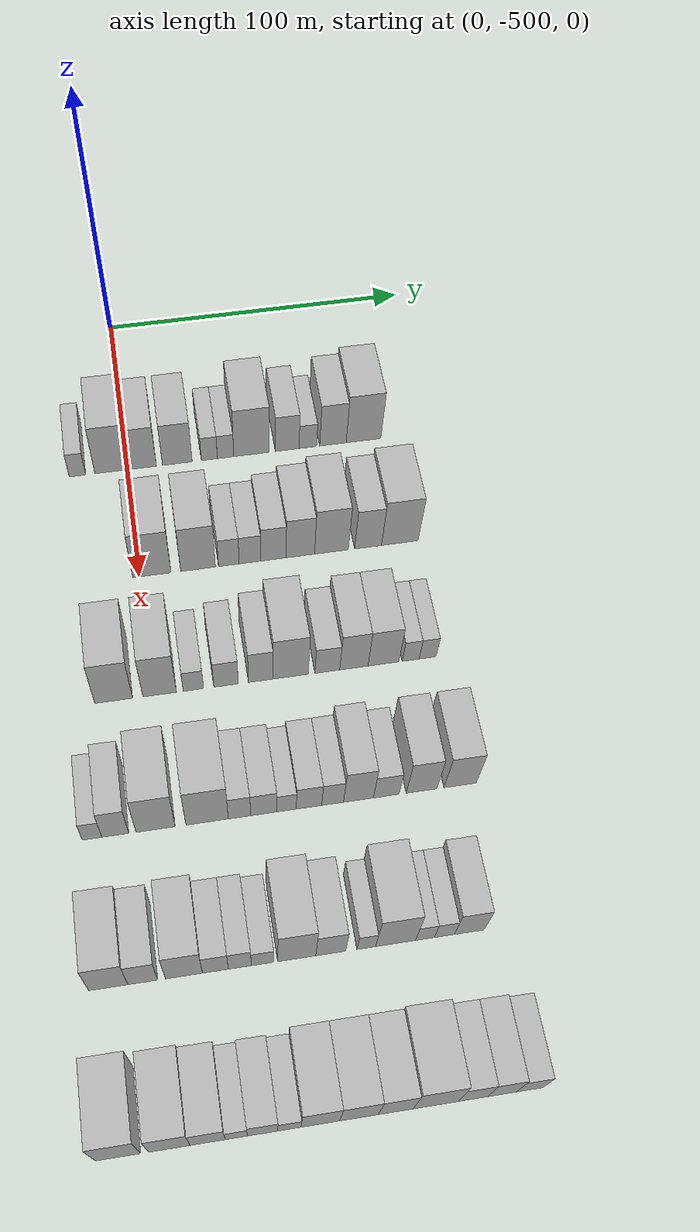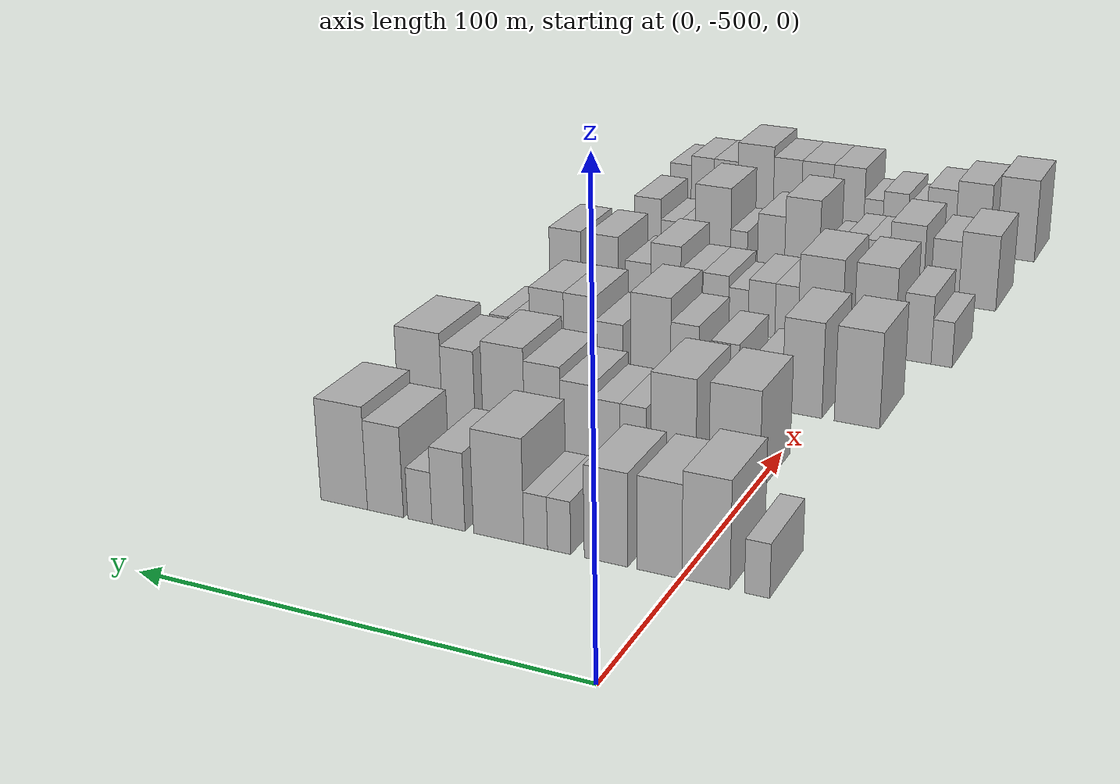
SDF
<sdf version="1.6">
 <world name="default">
  <model name="building_13">
   <static>1</static>
   <pose>50.0000 -515.9290 0 0.000000 0.000000 0.000000</pose>
   <link name="link">
    <pose>0 0 6.00 0 0 0</pose>
    <collision name="collision"><geometry><box><size>20.0000 5.2492 12.0000</size></box></geometry></collision>
    <visual name="visual">
     <cast_shadows>0</cast_shadows>
     <geometry><box><size>20.0000 5.2492 12.0000</size></box></geometry>
     <material>
      <script>
       <uri>model://HANNAS_wall/materials/scripts</uri>
       <uri>model://HANNAS_wall/materials/textures</uri>
       <name>vrc/HANNAS_wall</name>
      </script>
     </material>
    </visual>
   </link>
  </model>
  <model name="building_14">
   <static>1</static>
   <pose>50.0000 -505.2257 0 0.000000 0.000000 0.000000</pose>
   <link name="link">
    <pose>0 0 12.00 0 0 0</pose>
    <collision name="collision"><geometry><box><size>20.0000 10.1575 24.0000</size></box></geometry></collision>
    <visual name="visual">
     <cast_shadows>0</cast_shadows>
     <geometry><box><size>20.0000 10.1575 24.0000</size></box></geometry>
     <material>
      <script>
       <uri>model://HANNAS_wall/materials/scripts</uri>
       <uri>model://HANNAS_wall/materials/textures</uri>
       <name>vrc/HANNAS_wall</name>
      </script>
     </material>
    </visual>
   </link>
  </model>
  <model name="building_15">
   <static>1</static>
   <pose>50.0000 -495.3241 0 0.000000 0.000000 0.000000</pose>
   <link name="link">
    <pose>0 0 10.50 0 0 0</pose>
    <collision name="collision"><geometry><box><size>20.0000 9.6456 21.0000</size></box></geometry></collision>
    <visual name="visual">
     <cast_shadows>0</cast_shadows>
     <geometry><box><size>20.0000 9.6456 21.0000</size></box></geometry>
     <material>
      <script>
       <uri>model://HANNAS_wall/materials/scripts</uri>
       <uri>model://HANNAS_wall/materials/textures</uri>
       <name>vrc/HANNAS_wall</name>
      </script>
     </material>
    </visual>
   </link>
  </model>
  <model name="building_16">
   <static>1</static>
   <pose>50.0000 -483.7051 0 0.000000 0.000000 0.000000</pose>
   <link name="link">
    <pose>0 0 10.50 0 0 0</pose>
    <collision name="collision"><geometry><box><size>20.0000 9.5925 21.0000</size></box></geometry></collision>
    <visual name="visual">
     <cast_shadows>0</cast_shadows>
     <geometry><box><size>20.0000 9.5925 21.0000</size></box></geometry>
     <material>
      <script>
       <uri>model://HANNAS_wall/materials/scripts</uri>
       <uri>model://HANNAS_wall/materials/textures</uri>
       <name>vrc/HANNAS_wall</name>
      </script>
     </material>
    </visual>
   </link>
  </model>
  <model name="building_17">
   <static>1</static>
   <pose>50.0000 -473.2947 0 0.000000 0.000000 0.000000</pose>
   <link name="link">
    <pose>0 0 6.00 0 0 0</pose>
    <collision name="collision"><geometry><box><size>20.0000 5.2283 12.0000</size></box></geometry></collision>
    <visual name="visual">
     <cast_shadows>0</cast_shadows>
     <geometry><box><size>20.0000 5.2283 12.0000</size></box></geometry>
     <material>
      <script>
       <uri>model://HANNAS_wall/materials/scripts</uri>
       <uri>model://HANNAS_wall/materials/textures</uri>
       <name>vrc/HANNAS_wall</name>
      </script>
     </material>
    </visual>
   </link>
  </model>
  <model name="building_18">
   <static>1</static>
   <pose>50.0000 -468.0105 0 0.000000 0.000000 0.000000</pose>
   <link name="link">
    <pose>0 0 6.00 0 0 0</pose>
    <collision name="collision"><geometry><box><size>20.0000 5.3400 12.0000</size></box></geometry></collision>
    <visual name="visual">
     <cast_shadows>0</cast_shadows>
     <geometry><box><size>20.0000 5.3400 12.0000</size></box></geometry>
     <material>
      <script>
       <uri>model://HANNAS_wall/materials/scripts</uri>
       <uri>model://HANNAS_wall/materials/textures</uri>
       <name>vrc/HANNAS_wall</name>
      </script>
     </material>
    </visual>
   </link>
  </model>
  <model name="building_19">
   <static>1</static>
   <pose>50.0000 -459.5287 0 0.000000 0.000000 0.000000</pose>
   <link name="link">
    <pose>0 0 12.00 0 0 0</pose>
    <collision name="collision"><geometry><box><size>20.0000 11.6236 24.0000</size></box></geometry></collision>
    <visual name="visual">
     <cast_shadows>0</cast_shadows>
     <geometry><box><size>20.0000 11.6236 24.0000</size></box></geometry>
     <material>
      <script>
       <uri>model://HANNAS_wall/materials/scripts</uri>
       <uri>model://HANNAS_wall/materials/textures</uri>
       <name>vrc/HANNAS_wall</name>
      </script>
     </material>
    </visual>
   </link>
  </model>
  <model name="building_20">
   <static>1</static>
   <pose>50.0000 -447.8351 0 0.000000 0.000000 0.000000</pose>
   <link name="link">
    <pose>0 0 9.00 0 0 0</pose>
    <collision name="collision"><geometry><box><size>20.0000 7.7635 18.0000</size></box></geometry></collision>
    <visual name="visual">
     <cast_shadows>0</cast_shadows>
     <geometry><box><size>20.0000 7.7635 18.0000</size></box></geometry>
     <material>
      <script>
       <uri>model://HANNAS_wall/materials/scripts</uri>
       <uri>model://HANNAS_wall/materials/textures</uri>
       <name>vrc/HANNAS_wall</name>
      </script>
     </material>
    </visual>
   </link>
  </model>
  <model name="building_21">
   <static>1</static>
   <pose>50.0000 -441.0553 0 0.000000 0.000000 0.000000</pose>
   <link name="link">
    <pose>0 0 6.00 0 0 0</pose>
    <collision name="collision"><geometry><box><size>20.0000 5.7961 12.0000</size></box></geometry></collision>
    <visual name="visual">
     <cast_shadows>0</cast_shadows>
     <geometry><box><size>20.0000 5.7961 12.0000</size></box></geometry>
     <material>
      <script>
       <uri>model://HANNAS_wall/materials/scripts</uri>
       <uri>model://HANNAS_wall/materials/textures</uri>
       <name>vrc/HANNAS_wall</name>
      </script>
     </material>
    </visual>
   </link>
  </model>
  <model name="building_22">
   <static>1</static>
   <pose>50.0000 -432.7885 0 0.000000 0.000000 0.000000</pose>
   <link name="link">
    <pose>0 0 10.50 0 0 0</pose>
    <collision name="collision"><geometry><box><size>20.0000 8.7375 21.0000</size></box></geometry></collision>
    <visual name="visual">
     <cast_shadows>0</cast_shadows>
     <geometry><box><size>20.0000 8.7375 21.0000</size></box></geometry>
     <material>
      <script>
       <uri>model://HANNAS_wall/materials/scripts</uri>
       <uri>model://HANNAS_wall/materials/textures</uri>
       <name>vrc/HANNAS_wall</name>
      </script>
     </material>
    </visual>
   </link>
  </model>
  <model name="building_23">
   <static>1</static>
   <pose>50.0000 -422.6834 0 0.000000 0.000000 0.000000</pose>
   <link name="link">
    <pose>0 0 12.00 0 0 0</pose>
    <collision name="collision"><geometry><box><size>20.0000 11.4728 24.0000</size></box></geometry></collision>
    <visual name="visual">
     <cast_shadows>0</cast_shadows>
     <geometry><box><size>20.0000 11.4728 24.0000</size></box></geometry>
     <material>
      <script>
       <uri>model://HANNAS_wall/materials/scripts</uri>
       <uri>model://HANNAS_wall/materials/textures</uri>
       <name>vrc/HANNAS_wall</name>
      </script>
     </material>
    </visual>
   </link>
  </model>
  <model name="building_160">
   <static>1</static>
   <pose>90.0000 -496.0259 0 0.000000 0.000000 0.000000</pose>
   <link name="link">
    <pose>0 0 12.00 0 0 0</pose>
    <collision name="collision"><geometry><box><size>20.0000 11.7619 24.0000</size></box></geometry></collision>
    <visual name="visual">
     <cast_shadows>0</cast_shadows>
     <geometry><box><size>20.0000 11.7619 24.0000</size></box></geometry>
     <material>
      <script>
       <uri>model://HANNAS_wall/materials/scripts</uri>
       <uri>model://HANNAS_wall/materials/textures</uri>
       <name>vrc/HANNAS_wall</name>
      </script>
     </material>
    </visual>
   </link>
  </model>
  <model name="building_161">
   <static>1</static>
   <pose>90.0000 -481.8008 0 0.000000 0.000000 0.000000</pose>
   <link name="link">
    <pose>0 0 12.00 0 0 0</pose>
    <collision name="collision"><geometry><box><size>20.0000 10.6884 24.0000</size></box></geometry></collision>
    <visual name="visual">
     <cast_shadows>0</cast_shadows>
     <geometry><box><size>20.0000 10.6884 24.0000</size></box></geometry>
     <material>
      <script>
       <uri>model://HANNAS_wall/materials/scripts</uri>
       <uri>model://HANNAS_wall/materials/textures</uri>
       <name>vrc/HANNAS_wall</name>
      </script>
     </material>
    </visual>
   </link>
  </model>
  <model name="building_162">
   <static>1</static>
   <pose>90.0000 -472.2706 0 0.000000 0.000000 0.000000</pose>
   <link name="link">
    <pose>0 0 7.50 0 0 0</pose>
    <collision name="collision"><geometry><box><size>20.0000 6.3720 15.0000</size></box></geometry></collision>
    <visual name="visual">
     <cast_shadows>0</cast_shadows>
     <geometry><box><size>20.0000 6.3720 15.0000</size></box></geometry>
     <material>
      <script>
       <uri>model://HANNAS_wall/materials/scripts</uri>
       <uri>model://HANNAS_wall/materials/textures</uri>
       <name>vrc/HANNAS_wall</name>
      </script>
     </material>
    </visual>
   </link>
  </model>
  <model name="building_163">
   <static>1</static>
   <pose>90.0000 -465.7059 0 0.000000 0.000000 0.000000</pose>
   <link name="link">
    <pose>0 0 7.50 0 0 0</pose>
    <collision name="collision"><geometry><box><size>20.0000 6.7574 15.0000</size></box></geometry></collision>
    <visual name="visual">
     <cast_shadows>0</cast_shadows>
     <geometry><box><size>20.0000 6.7574 15.0000</size></box></geometry>
     <material>
      <script>
       <uri>model://HANNAS_wall/materials/scripts</uri>
       <uri>model://HANNAS_wall/materials/textures</uri>
       <name>vrc/HANNAS_wall</name>
      </script>
     </material>
    </visual>
   </link>
  </model>
  <model name="building_164">
   <static>1</static>
   <pose>90.0000 -458.4260 0 0.000000 0.000000 0.000000</pose>
   <link name="link">
    <pose>0 0 9.00 0 0 0</pose>
    <collision name="collision"><geometry><box><size>20.0000 7.8024 18.0000</size></box></geometry></collision>
    <visual name="visual">
     <cast_shadows>0</cast_shadows>
     <geometry><box><size>20.0000 7.8024 18.0000</size></box></geometry>
     <material>
      <script>
       <uri>model://HANNAS_wall/materials/scripts</uri>
       <uri>model://HANNAS_wall/materials/textures</uri>
       <name>vrc/HANNAS_wall</name>
      </script>
     </material>
    </visual>
   </link>
  </model>
  <model name="building_165">
   <static>1</static>
   <pose>90.0000 -450.0483 0 0.000000 0.000000 0.000000</pose>
   <link name="link">
    <pose>0 0 10.50 0 0 0</pose>
    <collision name="collision"><geometry><box><size>20.0000 8.9530 21.0000</size></box></geometry></collision>
    <visual name="visual">
     <cast_shadows>0</cast_shadows>
     <geometry><box><size>20.0000 8.9530 21.0000</size></box></geometry>
     <material>
      <script>
       <uri>model://HANNAS_wall/materials/scripts</uri>
       <uri>model://HANNAS_wall/materials/textures</uri>
       <name>vrc/HANNAS_wall</name>
      </script>
     </material>
    </visual>
   </link>
  </model>
  <model name="building_166">
   <static>1</static>
   <pose>90.0000 -440.2743 0 0.000000 0.000000 0.000000</pose>
   <link name="link">
    <pose>0 0 12.00 0 0 0</pose>
    <collision name="collision"><geometry><box><size>20.0000 10.5950 24.0000</size></box></geometry></collision>
    <visual name="visual">
     <cast_shadows>0</cast_shadows>
     <geometry><box><size>20.0000 10.5950 24.0000</size></box></geometry>
     <material>
      <script>
       <uri>model://HANNAS_wall/materials/scripts</uri>
       <uri>model://HANNAS_wall/materials/textures</uri>
       <name>vrc/HANNAS_wall</name>
      </script>
     </material>
    </visual>
   </link>
  </model>
  <model name="building_167">
   <static>1</static>
   <pose>90.0000 -428.7430 0 0.000000 0.000000 0.000000</pose>
   <link name="link">
    <pose>0 0 10.50 0 0 0</pose>
    <collision name="collision"><geometry><box><size>20.0000 8.4676 21.0000</size></box></geometry></collision>
    <visual name="visual">
     <cast_shadows>0</cast_shadows>
     <geometry><box><size>20.0000 8.4676 21.0000</size></box></geometry>
     <material>
      <script>
       <uri>model://HANNAS_wall/materials/scripts</uri>
       <uri>model://HANNAS_wall/materials/textures</uri>
       <name>vrc/HANNAS_wall</name>
      </script>
     </material>
    </visual>
   </link>
  </model>
  <model name="building_168">
   <static>1</static>
   <pose>90.0000 -418.7103 0 0.000000 0.000000 0.000000</pose>
   <link name="link">
    <pose>0 0 12.00 0 0 0</pose>
    <collision name="collision"><geometry><box><size>20.0000 11.5978 24.0000</size></box></geometry></collision>
    <visual name="visual">
     <cast_shadows>0</cast_shadows>
     <geometry><box><size>20.0000 11.5978 24.0000</size></box></geometry>
     <material>
      <script>
       <uri>model://HANNAS_wall/materials/scripts</uri>
       <uri>model://HANNAS_wall/materials/textures</uri>
       <name>vrc/HANNAS_wall</name>
      </script>
     </material>
    </visual>
   </link>
  </model>
  <model name="building_291">
   <static>1</static>
   <pose>130.0000 -511.2326 0 0.000000 0.000000 0.000000</pose>
   <link name="link">
    <pose>0 0 12.00 0 0 0</pose>
    <collision name="collision"><geometry><box><size>20.0000 10.9608 24.0000</size></box></geometry></collision>
    <visual name="visual">
     <cast_shadows>0</cast_shadows>
     <geometry><box><size>20.0000 10.9608 24.0000</size></box></geometry>
     <material>
      <script>
       <uri>model://HANNAS_wall/materials/scripts</uri>
       <uri>model://HANNAS_wall/materials/textures</uri>
       <name>vrc/HANNAS_wall</name>
      </script>
     </material>
    </visual>
   </link>
  </model>
  <model name="building_292">
   <static>1</static>
   <pose>130.0000 -497.8514 0 0.000000 0.000000 0.000000</pose>
   <link name="link">
    <pose>0 0 12.00 0 0 0</pose>
    <collision name="collision"><geometry><box><size>20.0000 9.8015 24.0000</size></box></geometry></collision>
    <visual name="visual">
     <cast_shadows>0</cast_shadows>
     <geometry><box><size>20.0000 9.8015 24.0000</size></box></geometry>
     <material>
      <script>
       <uri>model://HANNAS_wall/materials/scripts</uri>
       <uri>model://HANNAS_wall/materials/textures</uri>
       <name>vrc/HANNAS_wall</name>
      </script>
     </material>
    </visual>
   </link>
  </model>
  <model name="building_293">
   <static>1</static>
   <pose>130.0000 -487.9858 0 0.000000 0.000000 0.000000</pose>
   <link name="link">
    <pose>0 0 6.00 0 0 0</pose>
    <collision name="collision"><geometry><box><size>20.0000 5.9298 12.0000</size></box></geometry></collision>
    <visual name="visual">
     <cast_shadows>0</cast_shadows>
     <geometry><box><size>20.0000 5.9298 12.0000</size></box></geometry>
     <material>
      <script>
       <uri>model://HANNAS_wall/materials/scripts</uri>
       <uri>model://HANNAS_wall/materials/textures</uri>
       <name>vrc/HANNAS_wall</name>
      </script>
     </material>
    </visual>
   </link>
  </model>
  <model name="building_294">
   <static>1</static>
   <pose>130.0000 -478.4175 0 0.000000 0.000000 0.000000</pose>
   <link name="link">
    <pose>0 0 7.50 0 0 0</pose>
    <collision name="collision"><geometry><box><size>20.0000 7.2067 15.0000</size></box></geometry></collision>
    <visual name="visual">
     <cast_shadows>0</cast_shadows>
     <geometry><box><size>20.0000 7.2067 15.0000</size></box></geometry>
     <material>
      <script>
       <uri>model://HANNAS_wall/materials/scripts</uri>
       <uri>model://HANNAS_wall/materials/textures</uri>
       <name>vrc/HANNAS_wall</name>
      </script>
     </material>
    </visual>
   </link>
  </model>
  <model name="building_295">
   <static>1</static>
   <pose>130.0000 -468.1986 0 0.000000 0.000000 0.000000</pose>
   <link name="link">
    <pose>0 0 9.00 0 0 0</pose>
    <collision name="collision"><geometry><box><size>20.0000 7.2311 18.0000</size></box></geometry></collision>
    <visual name="visual">
     <cast_shadows>0</cast_shadows>
     <geometry><box><size>20.0000 7.2311 18.0000</size></box></geometry>
     <material>
      <script>
       <uri>model://HANNAS_wall/materials/scripts</uri>
       <uri>model://HANNAS_wall/materials/textures</uri>
       <name>vrc/HANNAS_wall</name>
      </script>
     </material>
    </visual>
   </link>
  </model>
  <model name="building_296">
   <static>1</static>
   <pose>130.0000 -459.3774 0 0.000000 0.000000 0.000000</pose>
   <link name="link">
    <pose>0 0 12.00 0 0 0</pose>
    <collision name="collision"><geometry><box><size>20.0000 10.4114 24.0000</size></box></geometry></collision>
    <visual name="visual">
     <cast_shadows>0</cast_shadows>
     <geometry><box><size>20.0000 10.4114 24.0000</size></box></geometry>
     <material>
      <script>
       <uri>model://HANNAS_wall/materials/scripts</uri>
       <uri>model://HANNAS_wall/materials/textures</uri>
       <name>vrc/HANNAS_wall</name>
      </script>
     </material>
    </visual>
   </link>
  </model>
  <model name="building_297">
   <static>1</static>
   <pose>130.0000 -448.4804 0 0.000000 0.000000 0.000000</pose>
   <link name="link">
    <pose>0 0 7.50 0 0 0</pose>
    <collision name="collision"><geometry><box><size>20.0000 7.3826 15.0000</size></box></geometry></collision>
    <visual name="visual">
     <cast_shadows>0</cast_shadows>
     <geometry><box><size>20.0000 7.3826 15.0000</size></box></geometry>
     <material>
      <script>
       <uri>model://HANNAS_wall/materials/scripts</uri>
       <uri>model://HANNAS_wall/materials/textures</uri>
       <name>vrc/HANNAS_wall</name>
      </script>
     </material>
    </visual>
   </link>
  </model>
  <model name="building_298">
   <static>1</static>
   <pose>130.0000 -440.5735 0 0.000000 0.000000 0.000000</pose>
   <link name="link">
    <pose>0 0 10.50 0 0 0</pose>
    <collision name="collision"><geometry><box><size>20.0000 8.4312 21.0000</size></box></geometry></collision>
    <visual name="visual">
     <cast_shadows>0</cast_shadows>
     <geometry><box><size>20.0000 8.4312 21.0000</size></box></geometry>
     <material>
      <script>
       <uri>model://HANNAS_wall/materials/scripts</uri>
       <uri>model://HANNAS_wall/materials/textures</uri>
       <name>vrc/HANNAS_wall</name>
      </script>
     </material>
    </visual>
   </link>
  </model>
  <model name="building_299">
   <static>1</static>
   <pose>130.0000 -431.7230 0 0.000000 0.000000 0.000000</pose>
   <link name="link">
    <pose>0 0 10.50 0 0 0</pose>
    <collision name="collision"><geometry><box><size>20.0000 9.2698 21.0000</size></box></geometry></collision>
    <visual name="visual">
     <cast_shadows>0</cast_shadows>
     <geometry><box><size>20.0000 9.2698 21.0000</size></box></geometry>
     <material>
      <script>
       <uri>model://HANNAS_wall/materials/scripts</uri>
       <uri>model://HANNAS_wall/materials/textures</uri>
       <name>vrc/HANNAS_wall</name>
      </script>
     </material>
    </visual>
   </link>
  </model>
  <model name="building_300">
   <static>1</static>
   <pose>130.0000 -423.5550 0 0.000000 0.000000 0.000000</pose>
   <link name="link">
    <pose>0 0 6.00 0 0 0</pose>
    <collision name="collision"><geometry><box><size>20.0000 5.0663 12.0000</size></box></geometry></collision>
    <visual name="visual">
     <cast_shadows>0</cast_shadows>
     <geometry><box><size>20.0000 5.0663 12.0000</size></box></geometry>
     <material>
      <script>
       <uri>model://HANNAS_wall/materials/scripts</uri>
       <uri>model://HANNAS_wall/materials/textures</uri>
       <name>vrc/HANNAS_wall</name>
      </script>
     </material>
    </visual>
   </link>
  </model>
  <model name="building_301">
   <static>1</static>
   <pose>130.0000 -418.4880 0 0.000000 0.000000 0.000000</pose>
   <link name="link">
    <pose>0 0 6.00 0 0 0</pose>
    <collision name="collision"><geometry><box><size>20.0000 5.0676 12.0000</size></box></geometry></collision>
    <visual name="visual">
     <cast_shadows>0</cast_shadows>
     <geometry><box><size>20.0000 5.0676 12.0000</size></box></geometry>
     <material>
      <script>
       <uri>model://HANNAS_wall/materials/scripts</uri>
       <uri>model://HANNAS_wall/materials/textures</uri>
       <name>vrc/HANNAS_wall</name>
      </script>
     </material>
    </visual>
   </link>
  </model>
  <model name="building_431">
   <static>1</static>
   <pose>170.0000 -520.6272 0 0.000000 0.000000 0.000000</pose>
   <link name="link">
    <pose>0 0 6.00 0 0 0</pose>
    <collision name="collision"><geometry><box><size>20.0000 5.3405 12.0000</size></box></geometry></collision>
    <visual name="visual">
     <cast_shadows>0</cast_shadows>
     <geometry><box><size>20.0000 5.3405 12.0000</size></box></geometry>
     <material>
      <script>
       <uri>model://HANNAS_wall/materials/scripts</uri>
       <uri>model://HANNAS_wall/materials/textures</uri>
       <name>vrc/HANNAS_wall</name>
      </script>
     </material>
    </visual>
   </link>
  </model>
  <model name="building_432">
   <static>1</static>
   <pose>170.0000 -514.2699 0 0.000000 0.000000 0.000000</pose>
   <link name="link">
    <pose>0 0 9.00 0 0 0</pose>
    <collision name="collision"><geometry><box><size>20.0000 7.3741 18.0000</size></box></geometry></collision>
    <visual name="visual">
     <cast_shadows>0</cast_shadows>
     <geometry><box><size>20.0000 7.3741 18.0000</size></box></geometry>
     <material>
      <script>
       <uri>model://HANNAS_wall/materials/scripts</uri>
       <uri>model://HANNAS_wall/materials/textures</uri>
       <name>vrc/HANNAS_wall</name>
      </script>
     </material>
    </visual>
   </link>
  </model>
  <model name="building_433">
   <static>1</static>
   <pose>170.0000 -503.1865 0 0.000000 0.000000 0.000000</pose>
   <link name="link">
    <pose>0 0 12.00 0 0 0</pose>
    <collision name="collision"><geometry><box><size>20.0000 10.7928 24.0000</size></box></geometry></collision>
    <visual name="visual">
     <cast_shadows>0</cast_shadows>
     <geometry><box><size>20.0000 10.7928 24.0000</size></box></geometry>
     <material>
      <script>
       <uri>model://HANNAS_wall/materials/scripts</uri>
       <uri>model://HANNAS_wall/materials/textures</uri>
       <name>vrc/HANNAS_wall</name>
      </script>
     </material>
    </visual>
   </link>
  </model>
  <model name="building_434">
   <static>1</static>
   <pose>170.0000 -488.9445 0 0.000000 0.000000 0.000000</pose>
   <link name="link">
    <pose>0 0 12.00 0 0 0</pose>
    <collision name="collision"><geometry><box><size>20.0000 11.6912 24.0000</size></box></geometry></collision>
    <visual name="visual">
     <cast_shadows>0</cast_shadows>
     <geometry><box><size>20.0000 11.6912 24.0000</size></box></geometry>
     <material>
      <script>
       <uri>model://HANNAS_wall/materials/scripts</uri>
       <uri>model://HANNAS_wall/materials/textures</uri>
       <name>vrc/HANNAS_wall</name>
      </script>
     </material>
    </visual>
   </link>
  </model>
  <model name="building_435">
   <static>1</static>
   <pose>170.0000 -479.9878 0 0.000000 0.000000 0.000000</pose>
   <link name="link">
    <pose>0 0 7.50 0 0 0</pose>
    <collision name="collision"><geometry><box><size>20.0000 6.2221 15.0000</size></box></geometry></collision>
    <visual name="visual">
     <cast_shadows>0</cast_shadows>
     <geometry><box><size>20.0000 6.2221 15.0000</size></box></geometry>
     <material>
      <script>
       <uri>model://HANNAS_wall/materials/scripts</uri>
       <uri>model://HANNAS_wall/materials/textures</uri>
       <name>vrc/HANNAS_wall</name>
      </script>
     </material>
    </visual>
   </link>
  </model>
  <model name="building_436">
   <static>1</static>
   <pose>170.0000 -473.2434 0 0.000000 0.000000 0.000000</pose>
   <link name="link">
    <pose>0 0 7.50 0 0 0</pose>
    <collision name="collision"><geometry><box><size>20.0000 7.2667 15.0000</size></box></geometry></collision>
    <visual name="visual">
     <cast_shadows>0</cast_shadows>
     <geometry><box><size>20.0000 7.2667 15.0000</size></box></geometry>
     <material>
      <script>
       <uri>model://HANNAS_wall/materials/scripts</uri>
       <uri>model://HANNAS_wall/materials/textures</uri>
       <name>vrc/HANNAS_wall</name>
      </script>
     </material>
    </visual>
   </link>
  </model>
  <model name="building_437">
   <static>1</static>
   <pose>170.0000 -466.8823 0 0.000000 0.000000 0.000000</pose>
   <link name="link">
    <pose>0 0 6.00 0 0 0</pose>
    <collision name="collision"><geometry><box><size>20.0000 5.4555 12.0000</size></box></geometry></collision>
    <visual name="visual">
     <cast_shadows>0</cast_shadows>
     <geometry><box><size>20.0000 5.4555 12.0000</size></box></geometry>
     <material>
      <script>
       <uri>model://HANNAS_wall/materials/scripts</uri>
       <uri>model://HANNAS_wall/materials/textures</uri>
       <name>vrc/HANNAS_wall</name>
      </script>
     </material>
    </visual>
   </link>
  </model>
  <model name="building_438">
   <static>1</static>
   <pose>170.0000 -460.5724 0 0.000000 0.000000 0.000000</pose>
   <link name="link">
    <pose>0 0 7.50 0 0 0</pose>
    <collision name="collision"><geometry><box><size>20.0000 7.1642 15.0000</size></box></geometry></collision>
    <visual name="visual">
     <cast_shadows>0</cast_shadows>
     <geometry><box><size>20.0000 7.1642 15.0000</size></box></geometry>
     <material>
      <script>
       <uri>model://HANNAS_wall/materials/scripts</uri>
       <uri>model://HANNAS_wall/materials/textures</uri>
       <name>vrc/HANNAS_wall</name>
      </script>
     </material>
    </visual>
   </link>
  </model>
  <model name="building_439">
   <static>1</static>
   <pose>170.0000 -453.9250 0 0.000000 0.000000 0.000000</pose>
   <link name="link">
    <pose>0 0 7.50 0 0 0</pose>
    <collision name="collision"><geometry><box><size>20.0000 6.1306 15.0000</size></box></geometry></collision>
    <visual name="visual">
     <cast_shadows>0</cast_shadows>
     <geometry><box><size>20.0000 6.1306 15.0000</size></box></geometry>
     <material>
      <script>
       <uri>model://HANNAS_wall/materials/scripts</uri>
       <uri>model://HANNAS_wall/materials/textures</uri>
       <name>vrc/HANNAS_wall</name>
      </script>
     </material>
    </visual>
   </link>
  </model>
  <model name="building_440">
   <static>1</static>
   <pose>170.0000 -446.6286 0 0.000000 0.000000 0.000000</pose>
   <link name="link">
    <pose>0 0 10.50 0 0 0</pose>
    <collision name="collision"><geometry><box><size>20.0000 8.4621 21.0000</size></box></geometry></collision>
    <visual name="visual">
     <cast_shadows>0</cast_shadows>
     <geometry><box><size>20.0000 8.4621 21.0000</size></box></geometry>
     <material>
      <script>
       <uri>model://HANNAS_wall/materials/scripts</uri>
       <uri>model://HANNAS_wall/materials/textures</uri>
       <name>vrc/HANNAS_wall</name>
      </script>
     </material>
    </visual>
   </link>
  </model>
  <model name="building_441">
   <static>1</static>
   <pose>170.0000 -438.7584 0 0.000000 0.000000 0.000000</pose>
   <link name="link">
    <pose>0 0 7.50 0 0 0</pose>
    <collision name="collision"><geometry><box><size>20.0000 7.2784 15.0000</size></box></geometry></collision>
    <visual name="visual">
     <cast_shadows>0</cast_shadows>
     <geometry><box><size>20.0000 7.2784 15.0000</size></box></geometry>
     <material>
      <script>
       <uri>model://HANNAS_wall/materials/scripts</uri>
       <uri>model://HANNAS_wall/materials/textures</uri>
       <name>vrc/HANNAS_wall</name>
      </script>
     </material>
    </visual>
   </link>
  </model>
  <model name="building_442">
   <static>1</static>
   <pose>170.0000 -428.7441 0 0.000000 0.000000 0.000000</pose>
   <link name="link">
    <pose>0 0 10.50 0 0 0</pose>
    <collision name="collision"><geometry><box><size>20.0000 8.7502 21.0000</size></box></geometry></collision>
    <visual name="visual">
     <cast_shadows>0</cast_shadows>
     <geometry><box><size>20.0000 8.7502 21.0000</size></box></geometry>
     <material>
      <script>
       <uri>model://HANNAS_wall/materials/scripts</uri>
       <uri>model://HANNAS_wall/materials/textures</uri>
       <name>vrc/HANNAS_wall</name>
      </script>
     </material>
    </visual>
   </link>
  </model>
  <model name="building_443">
   <static>1</static>
   <pose>170.0000 -417.7489 0 0.000000 0.000000 0.000000</pose>
   <link name="link">
    <pose>0 0 10.50 0 0 0</pose>
    <collision name="collision"><geometry><box><size>20.0000 9.2401 21.0000</size></box></geometry></collision>
    <visual name="visual">
     <cast_shadows>0</cast_shadows>
     <geometry><box><size>20.0000 9.2401 21.0000</size></box></geometry>
     <material>
      <script>
       <uri>model://HANNAS_wall/materials/scripts</uri>
       <uri>model://HANNAS_wall/materials/textures</uri>
       <name>vrc/HANNAS_wall</name>
      </script>
     </material>
    </visual>
   </link>
  </model>
  <model name="building_575">
   <static>1</static>
   <pose>210.0000 -519.5620 0 0.000000 0.000000 0.000000</pose>
   <link name="link">
    <pose>0 0 10.50 0 0 0</pose>
    <collision name="collision"><geometry><box><size>20.0000 10.1320 21.0000</size></box></geometry></collision>
    <visual name="visual">
     <cast_shadows>0</cast_shadows>
     <geometry><box><size>20.0000 10.1320 21.0000</size></box></geometry>
     <material>
      <script>
       <uri>model://HANNAS_wall/materials/scripts</uri>
       <uri>model://HANNAS_wall/materials/textures</uri>
       <name>vrc/HANNAS_wall</name>
      </script>
     </material>
    </visual>
   </link>
  </model>
  <model name="building_576">
   <static>1</static>
   <pose>210.0000 -510.6370 0 0.000000 0.000000 0.000000</pose>
   <link name="link">
    <pose>0 0 9.00 0 0 0</pose>
    <collision name="collision"><geometry><box><size>20.0000 7.7180 18.0000</size></box></geometry></collision>
    <visual name="visual">
     <cast_shadows>0</cast_shadows>
     <geometry><box><size>20.0000 7.7180 18.0000</size></box></geometry>
     <material>
      <script>
       <uri>model://HANNAS_wall/materials/scripts</uri>
       <uri>model://HANNAS_wall/materials/textures</uri>
       <name>vrc/HANNAS_wall</name>
      </script>
     </material>
    </visual>
   </link>
  </model>
  <model name="building_577">
   <static>1</static>
   <pose>210.0000 -499.9510 0 0.000000 0.000000 0.000000</pose>
   <link name="link">
    <pose>0 0 10.50 0 0 0</pose>
    <collision name="collision"><geometry><box><size>20.0000 9.6540 21.0000</size></box></geometry></collision>
    <visual name="visual">
     <cast_shadows>0</cast_shadows>
     <geometry><box><size>20.0000 9.6540 21.0000</size></box></geometry>
     <material>
      <script>
       <uri>model://HANNAS_wall/materials/scripts</uri>
       <uri>model://HANNAS_wall/materials/textures</uri>
       <name>vrc/HANNAS_wall</name>
      </script>
     </material>
    </visual>
   </link>
  </model>
  <model name="building_578">
   <static>1</static>
   <pose>210.0000 -491.7512 0 0.000000 0.000000 0.000000</pose>
   <link name="link">
    <pose>0 0 7.50 0 0 0</pose>
    <collision name="collision"><geometry><box><size>20.0000 6.7457 15.0000</size></box></geometry></collision>
    <visual name="visual">
     <cast_shadows>0</cast_shadows>
     <geometry><box><size>20.0000 6.7457 15.0000</size></box></geometry>
     <material>
      <script>
       <uri>model://HANNAS_wall/materials/scripts</uri>
       <uri>model://HANNAS_wall/materials/textures</uri>
       <name>vrc/HANNAS_wall</name>
      </script>
     </material>
    </visual>
   </link>
  </model>
  <model name="building_579">
   <static>1</static>
   <pose>210.0000 -485.3694 0 0.000000 0.000000 0.000000</pose>
   <link name="link">
    <pose>0 0 7.50 0 0 0</pose>
    <collision name="collision"><geometry><box><size>20.0000 6.0177 15.0000</size></box></geometry></collision>
    <visual name="visual">
     <cast_shadows>0</cast_shadows>
     <geometry><box><size>20.0000 6.0177 15.0000</size></box></geometry>
     <material>
      <script>
       <uri>model://HANNAS_wall/materials/scripts</uri>
       <uri>model://HANNAS_wall/materials/textures</uri>
       <name>vrc/HANNAS_wall</name>
      </script>
     </material>
    </visual>
   </link>
  </model>
  <model name="building_580">
   <static>1</static>
   <pose>210.0000 -479.4020 0 0.000000 0.000000 0.000000</pose>
   <link name="link">
    <pose>0 0 6.00 0 0 0</pose>
    <collision name="collision"><geometry><box><size>20.0000 5.9171 12.0000</size></box></geometry></collision>
    <visual name="visual">
     <cast_shadows>0</cast_shadows>
     <geometry><box><size>20.0000 5.9171 12.0000</size></box></geometry>
     <material>
      <script>
       <uri>model://HANNAS_wall/materials/scripts</uri>
       <uri>model://HANNAS_wall/materials/textures</uri>
       <name>vrc/HANNAS_wall</name>
      </script>
     </material>
    </visual>
   </link>
  </model>
  <model name="building_581">
   <static>1</static>
   <pose>210.0000 -470.4187 0 0.000000 0.000000 0.000000</pose>
   <link name="link">
    <pose>0 0 12.00 0 0 0</pose>
    <collision name="collision"><geometry><box><size>20.0000 10.0495 24.0000</size></box></geometry></collision>
    <visual name="visual">
     <cast_shadows>0</cast_shadows>
     <geometry><box><size>20.0000 10.0495 24.0000</size></box></geometry>
     <material>
      <script>
       <uri>model://HANNAS_wall/materials/scripts</uri>
       <uri>model://HANNAS_wall/materials/textures</uri>
       <name>vrc/HANNAS_wall</name>
      </script>
     </material>
    </visual>
   </link>
  </model>
  <model name="building_582">
   <static>1</static>
   <pose>210.0000 -461.4299 0 0.000000 0.000000 0.000000</pose>
   <link name="link">
    <pose>0 0 9.00 0 0 0</pose>
    <collision name="collision"><geometry><box><size>20.0000 7.9279 18.0000</size></box></geometry></collision>
    <visual name="visual">
     <cast_shadows>0</cast_shadows>
     <geometry><box><size>20.0000 7.9279 18.0000</size></box></geometry>
     <material>
      <script>
       <uri>model://HANNAS_wall/materials/scripts</uri>
       <uri>model://HANNAS_wall/materials/textures</uri>
       <name>vrc/HANNAS_wall</name>
      </script>
     </material>
    </visual>
   </link>
  </model>
  <model name="building_583">
   <static>1</static>
   <pose>210.0000 -451.9924 0 0.000000 0.000000 0.000000</pose>
   <link name="link">
    <pose>0 0 6.00 0 0 0</pose>
    <collision name="collision"><geometry><box><size>20.0000 4.9471 12.0000</size></box></geometry></collision>
    <visual name="visual">
     <cast_shadows>0</cast_shadows>
     <geometry><box><size>20.0000 4.9471 12.0000</size></box></geometry>
     <material>
      <script>
       <uri>model://HANNAS_wall/materials/scripts</uri>
       <uri>model://HANNAS_wall/materials/textures</uri>
       <name>vrc/HANNAS_wall</name>
      </script>
     </material>
    </visual>
   </link>
  </model>
  <model name="building_584">
   <static>1</static>
   <pose>210.0000 -444.1760 0 0.000000 0.000000 0.000000</pose>
   <link name="link">
    <pose>0 0 12.00 0 0 0</pose>
    <collision name="collision"><geometry><box><size>20.0000 10.6859 24.0000</size></box></geometry></collision>
    <visual name="visual">
     <cast_shadows>0</cast_shadows>
     <geometry><box><size>20.0000 10.6859 24.0000</size></box></geometry>
     <material>
      <script>
       <uri>model://HANNAS_wall/materials/scripts</uri>
       <uri>model://HANNAS_wall/materials/textures</uri>
       <name>vrc/HANNAS_wall</name>
      </script>
     </material>
    </visual>
   </link>
  </model>
  <model name="building_585">
   <static>1</static>
   <pose>210.0000 -436.3168 0 0.000000 0.000000 0.000000</pose>
   <link name="link">
    <pose>0 0 6.00 0 0 0</pose>
    <collision name="collision"><geometry><box><size>20.0000 5.0324 12.0000</size></box></geometry></collision>
    <visual name="visual">
     <cast_shadows>0</cast_shadows>
     <geometry><box><size>20.0000 5.0324 12.0000</size></box></geometry>
     <material>
      <script>
       <uri>model://HANNAS_wall/materials/scripts</uri>
       <uri>model://HANNAS_wall/materials/textures</uri>
       <name>vrc/HANNAS_wall</name>
      </script>
     </material>
    </visual>
   </link>
  </model>
  <model name="building_586">
   <static>1</static>
   <pose>210.0000 -431.1214 0 0.000000 0.000000 0.000000</pose>
   <link name="link">
    <pose>0 0 6.00 0 0 0</pose>
    <collision name="collision"><geometry><box><size>20.0000 5.3584 12.0000</size></box></geometry></collision>
    <visual name="visual">
     <cast_shadows>0</cast_shadows>
     <geometry><box><size>20.0000 5.3584 12.0000</size></box></geometry>
     <material>
      <script>
       <uri>model://HANNAS_wall/materials/scripts</uri>
       <uri>model://HANNAS_wall/materials/textures</uri>
       <name>vrc/HANNAS_wall</name>
      </script>
     </material>
    </visual>
   </link>
  </model>
  <model name="building_587">
   <static>1</static>
   <pose>210.0000 -424.3947 0 0.000000 0.000000 0.000000</pose>
   <link name="link">
    <pose>0 0 9.00 0 0 0</pose>
    <collision name="collision"><geometry><box><size>20.0000 8.0950 18.0000</size></box></geometry></collision>
    <visual name="visual">
     <cast_shadows>0</cast_shadows>
     <geometry><box><size>20.0000 8.0950 18.0000</size></box></geometry>
     <material>
      <script>
       <uri>model://HANNAS_wall/materials/scripts</uri>
       <uri>model://HANNAS_wall/materials/textures</uri>
       <name>vrc/HANNAS_wall</name>
      </script>
     </material>
    </visual>
   </link>
  </model>
  <model name="building_715">
   <static>1</static>
   <pose>250.0000 -520.5937 0 0.000000 0.000000 0.000000</pose>
   <link name="link">
    <pose>0 0 12.00 0 0 0</pose>
    <collision name="collision"><geometry><box><size>20.0000 10.9460 24.0000</size></box></geometry></collision>
    <visual name="visual">
     <cast_shadows>0</cast_shadows>
     <geometry><box><size>20.0000 10.9460 24.0000</size></box></geometry>
     <material>
      <script>
       <uri>model://HANNAS_wall/materials/scripts</uri>
       <uri>model://HANNAS_wall/materials/textures</uri>
       <name>vrc/HANNAS_wall</name>
      </script>
     </material>
    </visual>
   </link>
  </model>
  <model name="building_716">
   <static>1</static>
   <pose>250.0000 -508.0920 0 0.000000 0.000000 0.000000</pose>
   <link name="link">
    <pose>0 0 10.50 0 0 0</pose>
    <collision name="collision"><geometry><box><size>20.0000 10.0574 21.0000</size></box></geometry></collision>
    <visual name="visual">
     <cast_shadows>0</cast_shadows>
     <geometry><box><size>20.0000 10.0574 21.0000</size></box></geometry>
     <material>
      <script>
       <uri>model://HANNAS_wall/materials/scripts</uri>
       <uri>model://HANNAS_wall/materials/textures</uri>
       <name>vrc/HANNAS_wall</name>
      </script>
     </material>
    </visual>
   </link>
  </model>
  <model name="building_717">
   <static>1</static>
   <pose>250.0000 -498.7612 0 0.000000 0.000000 0.000000</pose>
   <link name="link">
    <pose>0 0 9.00 0 0 0</pose>
    <collision name="collision"><geometry><box><size>20.0000 8.6042 18.0000</size></box></geometry></collision>
    <visual name="visual">
     <cast_shadows>0</cast_shadows>
     <geometry><box><size>20.0000 8.6042 18.0000</size></box></geometry>
     <material>
      <script>
       <uri>model://HANNAS_wall/materials/scripts</uri>
       <uri>model://HANNAS_wall/materials/textures</uri>
       <name>vrc/HANNAS_wall</name>
      </script>
     </material>
    </visual>
   </link>
  </model>
  <model name="building_718">
   <static>1</static>
   <pose>250.0000 -491.7233 0 0.000000 0.000000 0.000000</pose>
   <link name="link">
    <pose>0 0 6.00 0 0 0</pose>
    <collision name="collision"><geometry><box><size>20.0000 5.4716 12.0000</size></box></geometry></collision>
    <visual name="visual">
     <cast_shadows>0</cast_shadows>
     <geometry><box><size>20.0000 5.4716 12.0000</size></box></geometry>
     <material>
      <script>
       <uri>model://HANNAS_wall/materials/scripts</uri>
       <uri>model://HANNAS_wall/materials/textures</uri>
       <name>vrc/HANNAS_wall</name>
      </script>
     </material>
    </visual>
   </link>
  </model>
  <model name="building_719">
   <static>1</static>
   <pose>250.0000 -485.2598 0 0.000000 0.000000 0.000000</pose>
   <link name="link">
    <pose>0 0 7.50 0 0 0</pose>
    <collision name="collision"><geometry><box><size>20.0000 7.4553 15.0000</size></box></geometry></collision>
    <visual name="visual">
     <cast_shadows>0</cast_shadows>
     <geometry><box><size>20.0000 7.4553 15.0000</size></box></geometry>
     <material>
      <script>
       <uri>model://HANNAS_wall/materials/scripts</uri>
       <uri>model://HANNAS_wall/materials/textures</uri>
       <name>vrc/HANNAS_wall</name>
      </script>
     </material>
    </visual>
   </link>
  </model>
  <model name="building_720">
   <static>1</static>
   <pose>250.0000 -478.6594 0 0.000000 0.000000 0.000000</pose>
   <link name="link">
    <pose>0 0 6.00 0 0 0</pose>
    <collision name="collision"><geometry><box><size>20.0000 5.7455 12.0000</size></box></geometry></collision>
    <visual name="visual">
     <cast_shadows>0</cast_shadows>
     <geometry><box><size>20.0000 5.7455 12.0000</size></box></geometry>
     <material>
      <script>
       <uri>model://HANNAS_wall/materials/scripts</uri>
       <uri>model://HANNAS_wall/materials/textures</uri>
       <name>vrc/HANNAS_wall</name>
      </script>
     </material>
    </visual>
   </link>
  </model>
  <model name="building_721">
   <static>1</static>
   <pose>250.0000 -470.9898 0 0.000000 0.000000 0.000000</pose>
   <link name="link">
    <pose>0 0 10.50 0 0 0</pose>
    <collision name="collision"><geometry><box><size>20.0000 9.5937 21.0000</size></box></geometry></collision>
    <visual name="visual">
     <cast_shadows>0</cast_shadows>
     <geometry><box><size>20.0000 9.5937 21.0000</size></box></geometry>
     <material>
      <script>
       <uri>model://HANNAS_wall/materials/scripts</uri>
       <uri>model://HANNAS_wall/materials/textures</uri>
       <name>vrc/HANNAS_wall</name>
      </script>
     </material>
    </visual>
   </link>
  </model>
  <model name="building_722">
   <static>1</static>
   <pose>250.0000 -461.3813 0 0.000000 0.000000 0.000000</pose>
   <link name="link">
    <pose>0 0 10.50 0 0 0</pose>
    <collision name="collision"><geometry><box><size>20.0000 9.6234 21.0000</size></box></geometry></collision>
    <visual name="visual">
     <cast_shadows>0</cast_shadows>
     <geometry><box><size>20.0000 9.6234 21.0000</size></box></geometry>
     <material>
      <script>
       <uri>model://HANNAS_wall/materials/scripts</uri>
       <uri>model://HANNAS_wall/materials/textures</uri>
       <name>vrc/HANNAS_wall</name>
      </script>
     </material>
    </visual>
   </link>
  </model>
  <model name="building_723">
   <static>1</static>
   <pose>250.0000 -452.1880 0 0.000000 0.000000 0.000000</pose>
   <link name="link">
    <pose>0 0 10.50 0 0 0</pose>
    <collision name="collision"><geometry><box><size>20.0000 8.7631 21.0000</size></box></geometry></collision>
    <visual name="visual">
     <cast_shadows>0</cast_shadows>
     <geometry><box><size>20.0000 8.7631 21.0000</size></box></geometry>
     <material>
      <script>
       <uri>model://HANNAS_wall/materials/scripts</uri>
       <uri>model://HANNAS_wall/materials/textures</uri>
       <name>vrc/HANNAS_wall</name>
      </script>
     </material>
    </visual>
   </link>
  </model>
  <model name="building_724">
   <static>1</static>
   <pose>250.0000 -442.1341 0 0.000000 0.000000 0.000000</pose>
   <link name="link">
    <pose>0 0 12.00 0 0 0</pose>
    <collision name="collision"><geometry><box><size>20.0000 11.3446 24.0000</size></box></geometry></collision>
    <visual name="visual">
     <cast_shadows>0</cast_shadows>
     <geometry><box><size>20.0000 11.3446 24.0000</size></box></geometry>
     <material>
      <script>
       <uri>model://HANNAS_wall/materials/scripts</uri>
       <uri>model://HANNAS_wall/materials/textures</uri>
       <name>vrc/HANNAS_wall</name>
      </script>
     </material>
    </visual>
   </link>
  </model>
  <model name="building_725">
   <static>1</static>
   <pose>250.0000 -432.7034 0 0.000000 0.000000 0.000000</pose>
   <link name="link">
    <pose>0 0 9.00 0 0 0</pose>
    <collision name="collision"><geometry><box><size>20.0000 7.5169 18.0000</size></box></geometry></collision>
    <visual name="visual">
     <cast_shadows>0</cast_shadows>
     <geometry><box><size>20.0000 7.5169 18.0000</size></box></geometry>
     <material>
      <script>
       <uri>model://HANNAS_wall/materials/scripts</uri>
       <uri>model://HANNAS_wall/materials/textures</uri>
       <name>vrc/HANNAS_wall</name>
      </script>
     </material>
    </visual>
   </link>
  </model>
  <model name="building_726">
   <static>1</static>
   <pose>250.0000 -425.2738 0 0.000000 0.000000 0.000000</pose>
   <link name="link">
    <pose>0 0 9.00 0 0 0</pose>
    <collision name="collision"><geometry><box><size>20.0000 7.3424 18.0000</size></box></geometry></collision>
    <visual name="visual">
     <cast_shadows>0</cast_shadows>
     <geometry><box><size>20.0000 7.3424 18.0000</size></box></geometry>
     <material>
      <script>
       <uri>model://HANNAS_wall/materials/scripts</uri>
       <uri>model://HANNAS_wall/materials/textures</uri>
       <name>vrc/HANNAS_wall</name>
      </script>
     </material>
    </visual>
   </link>
  </model>
  <model name="building_727">
   <static>1</static>
   <pose>250.0000 -418.1935 0 0.000000 0.000000 0.000000</pose>
   <link name="link">
    <pose>0 0 7.50 0 0 0</pose>
    <collision name="collision"><geometry><box><size>20.0000 6.8181 15.0000</size></box></geometry></collision>
    <visual name="visual">
     <cast_shadows>0</cast_shadows>
     <geometry><box><size>20.0000 6.8181 15.0000</size></box></geometry>
     <material>
      <script>
       <uri>model://HANNAS_wall/materials/scripts</uri>
       <uri>model://HANNAS_wall/materials/textures</uri>
       <name>vrc/HANNAS_wall</name>
      </script>
     </material>
    </visual>
   </link>
  </model>
 </world>
</sdf>
